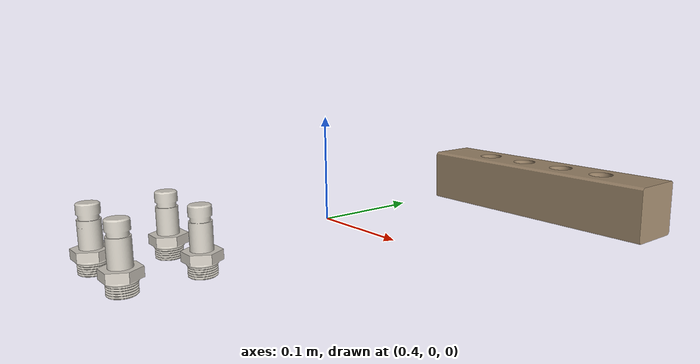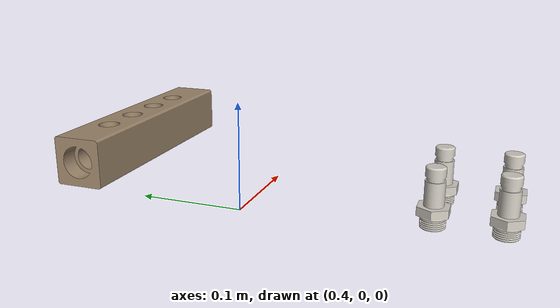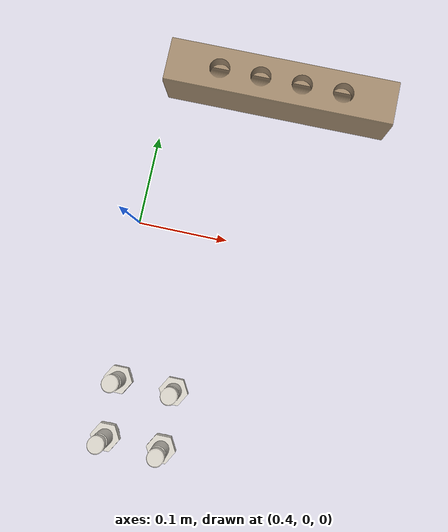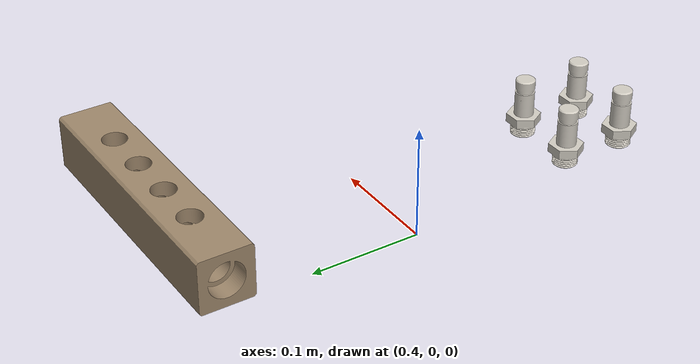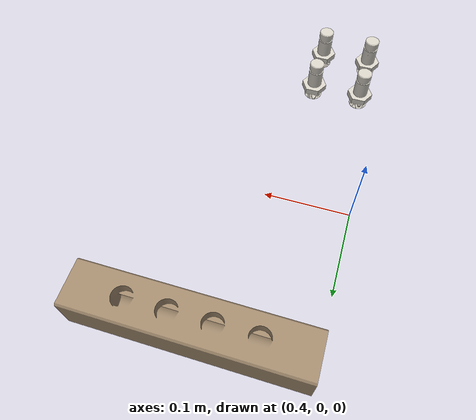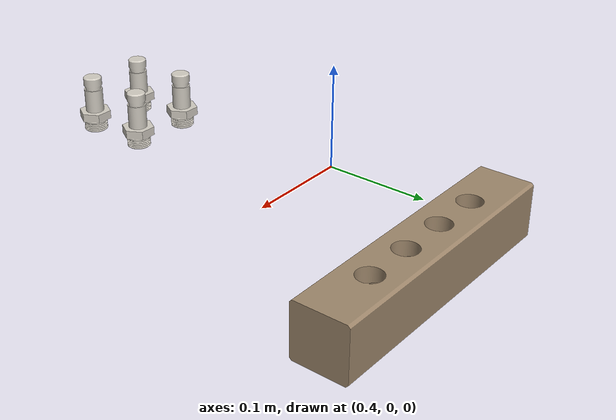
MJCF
<mujoco>
  <include file="common/cameras.xml"/>

  <default>
    <default class="qd">
      <default class="qd_visual">
        <geom type="mesh" contype="0" conaffinity="0" group="2" material="mat_qd"/>
      </default>
      <default class="qd_collision">
        <geom type="cylinder" group="3"/>
      </default>
    </default>
    <default class="manifold">
      <!-- group="1", not "2" - group 2 also holds the arm/gripper, so
           hiding it for the third-person-only color swap below would make
           the whole robot disappear from that render too. -->

      <default class="manifold_visual">
        <geom type="mesh" contype="0" conaffinity="0" group="1" material="mat_manifold"/>
      </default>
      <default class="manifold_collision">
        <geom type="box" group="3"/>
      </default>
    </default>
  </default>

  <asset>
    <mesh name="qd_visual" file="QD.stl"/>
    <mesh name="manifold_visual" file="manifold.obj"/>
    <material name="mat_qd" rgba="0.82 0.80 0.76 1" specular="0" shininess="0" reflectance="0"/>
    <material name="mat_manifold" rgba="0.62 0.53 0.42 1"/>
    <material name="mat_manifold_pretty" rgba="0.15 0.08 0.04 1" specular="0" shininess="0" reflectance="0" emission="1"/>
  </asset>

  <worldbody>
    <camera name="third_person_cam" class="scene_cam" pos="1.77 -0.236 0.88" xyaxes="0.161489 0.986875 -0.000000 -0.333339 0.054546 0.941228"/>

    <body name="manifold" pos="0.40 0.15 0">
      <geom name="manifold_visual_geom" class="manifold_visual" mesh="manifold_visual"/>
      <geom name="manifold_visual_geom_pretty" type="mesh" contype="0" conaffinity="0"
            group="5" mesh="manifold_visual" material="mat_manifold_pretty"/>

      <geom name="manifold_col_base" class="manifold_collision" size="0.125 0.025 0.012" pos="0.125 0.025 0.012"/>
      <geom name="manifold_col_top_left_end" class="manifold_collision" size="0.015 0.025 0.013" pos="0.015 0.025 0.037"/>
      <geom name="manifold_col_top_right_end" class="manifold_collision" size="0.015 0.025 0.013" pos="0.235 0.025 0.037"/>

      <site name="port_1_site" pos="0.0575 0.025 0.050" group="4" size="0.003"/>
      <site name="port_2_site" pos="0.1025 0.025 0.050" group="4" size="0.003"/>
      <site name="port_3_site" pos="0.1475 0.025 0.050" group="4" size="0.003"/>
      <site name="port_4_site" pos="0.1925 0.025 0.050" group="4" size="0.003"/>
    </body>

    <body name="qd_1" pos="0.42 -0.23 0.0559" quat="0 1 0 0" mocap="true">
      <geom name="qd_1_visual" class="qd_visual" mesh="qd_visual"/>
      <geom name="qd_1_col_far" class="qd_collision" size="0.00812 0.01745" pos="0 0 0.01745"/>
      <geom name="qd_1_col_flange" class="qd_collision" size="0.0156 0.004" pos="0 0 0.0389"/>
      <geom name="qd_1_col_thread" class="qd_collision" size="0.0106 0.006" pos="0 0 0.0489"/>
    </body>

    <body name="qd_2" pos="0.48 -0.23 0.0559" quat="0 1 0 0" mocap="true">
      <geom name="qd_2_visual" class="qd_visual" mesh="qd_visual"/>
      <geom name="qd_2_col_far" class="qd_collision" size="0.00812 0.01745" pos="0 0 0.01745"/>
      <geom name="qd_2_col_flange" class="qd_collision" size="0.0156 0.004" pos="0 0 0.0389"/>
      <geom name="qd_2_col_thread" class="qd_collision" size="0.0106 0.006" pos="0 0 0.0489"/>
    </body>

    <body name="qd_3" pos="0.42 -0.17 0.0559" quat="0 1 0 0" mocap="true">
      <geom name="qd_3_visual" class="qd_visual" mesh="qd_visual"/>
      <geom name="qd_3_col_far" class="qd_collision" size="0.00812 0.01745" pos="0 0 0.01745"/>
      <geom name="qd_3_col_flange" class="qd_collision" size="0.0156 0.004" pos="0 0 0.0389"/>
      <geom name="qd_3_col_thread" class="qd_collision" size="0.0106 0.006" pos="0 0 0.0489"/>
    </body>

    <body name="qd_4" pos="0.48 -0.17 0.0559" quat="0 1 0 0" mocap="true">
      <geom name="qd_4_visual" class="qd_visual" mesh="qd_visual"/>
      <geom name="qd_4_col_far" class="qd_collision" size="0.00812 0.01745" pos="0 0 0.01745"/>
      <geom name="qd_4_col_flange" class="qd_collision" size="0.0156 0.004" pos="0 0 0.0389"/>
      <geom name="qd_4_col_thread" class="qd_collision" size="0.0106 0.006" pos="0 0 0.0489"/>
    </body>
  </worldbody>
</mujoco>

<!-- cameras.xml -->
<mujoco>
  <default>
    <default class="scene_cam">
      <camera fovy="45"/>
    </default>
  </default>
</mujoco>
